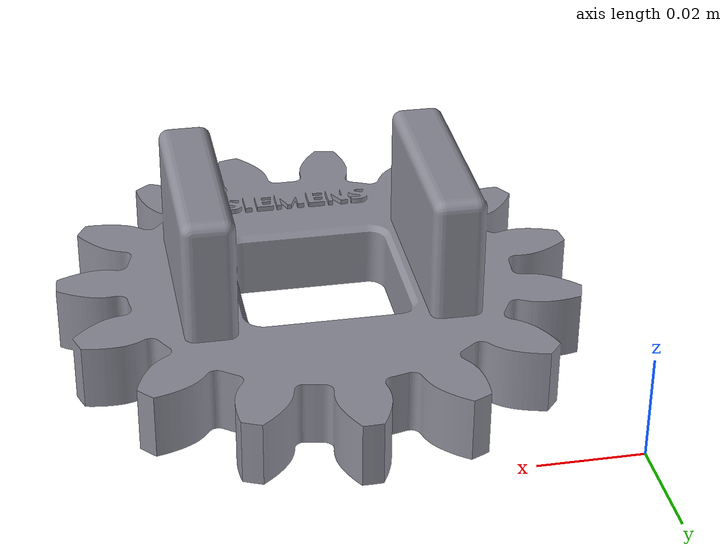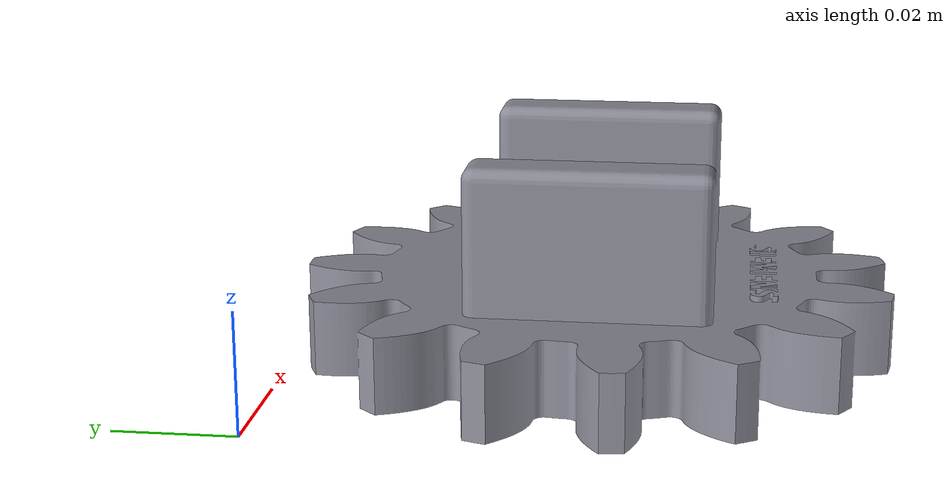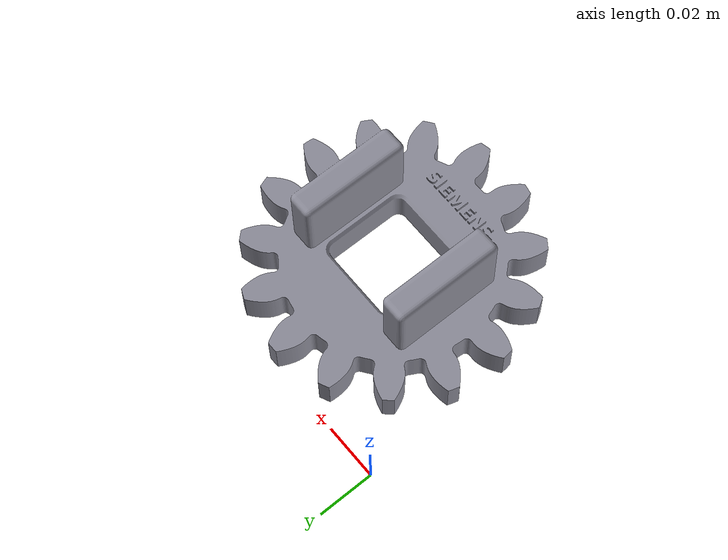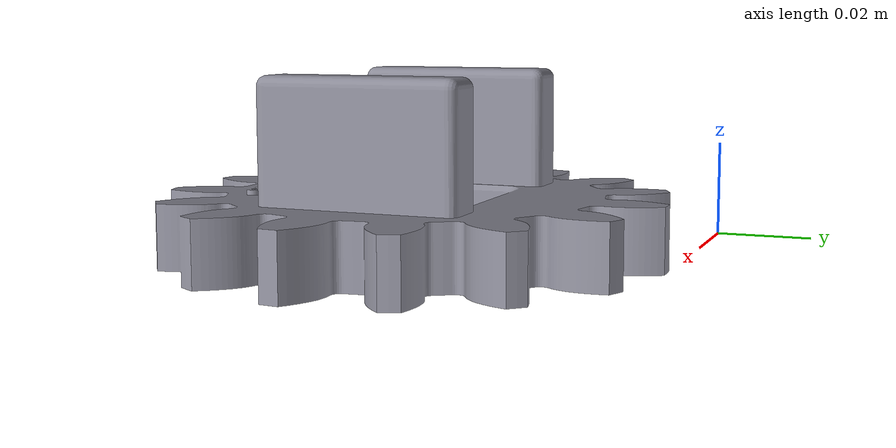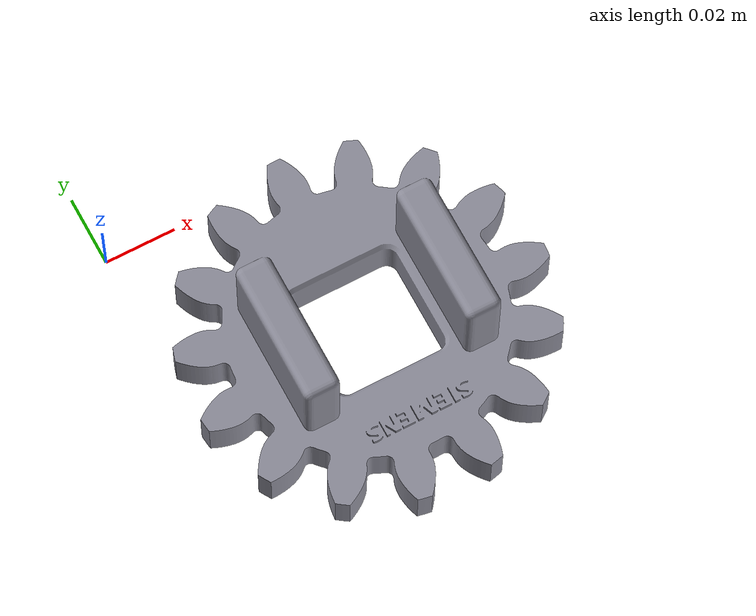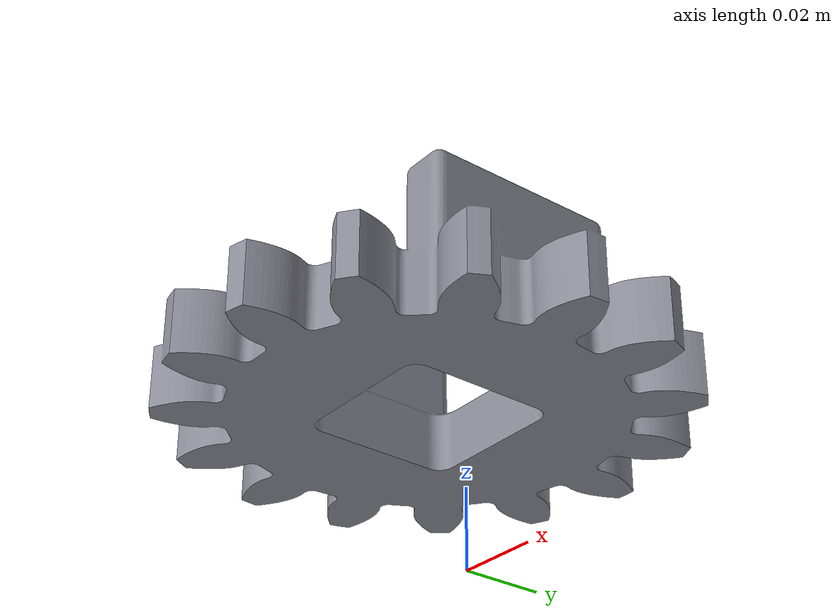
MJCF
<mujoco model="gear_small">
  <compiler angle="radian" autolimits="true" inertiafromgeom="true"
            meshdir="../assets/gearbox" texturedir="../assets/gearbox"/>

  <asset>
    <mesh name="gear_small" file="gear_small.stl" scale="1 1 1"/>
    <material name="metal_mat" rgba="0.55 0.55 0.60 1"
              specular="0.8" shininess="0.5" reflectance="0.3"/>
  </asset>

  <worldbody>
    <body name="gear_small">
      <freejoint name="gear_small_joint"/>
      <geom name="gear_small" mesh="gear_small" type="mesh" material="metal_mat"
            condim="6" friction="0.6 0.005 0.0001"
            solimp="0.99 0.99 0.001" solref="0.01 1"
            euler="3.14159 0 0" pos="0 0 0.03681"/>
    </body>
  </worldbody>
</mujoco>
